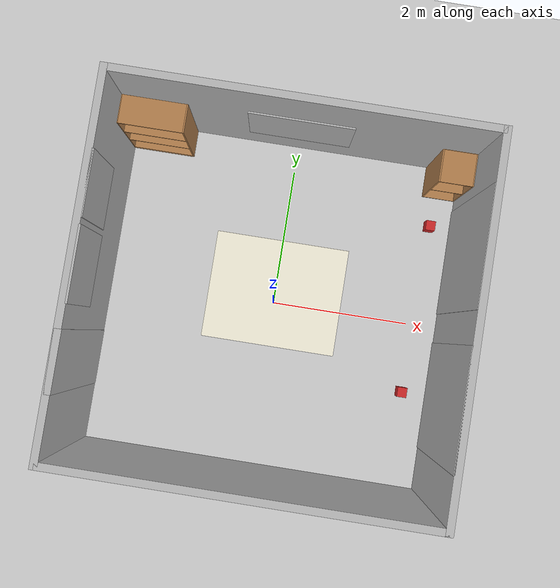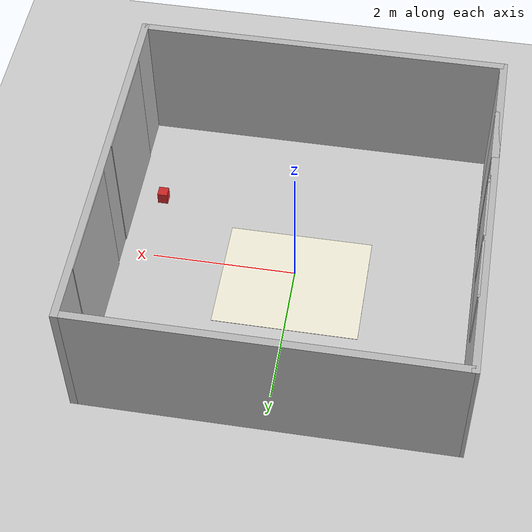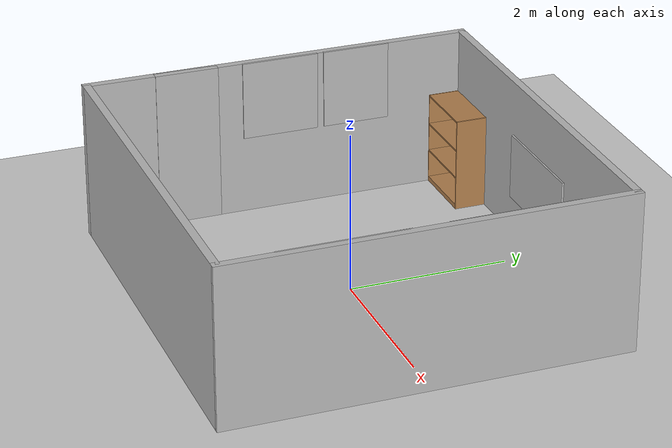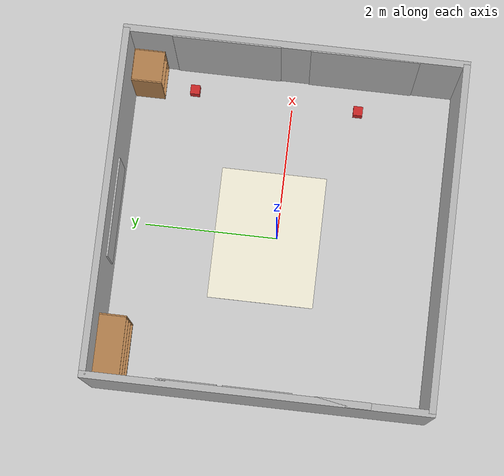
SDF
<sdf version="1.7">
 <world name="default">
  <light name="sun" type="directional">
   <pose>0 0 10 0 -0 0</pose>
   <diffuse>0.8 0.8 0.8 1</diffuse>
   <specular>0.2 0.2 0.2 1</specular>
   <attenuation>
    <range>1000</range>
    <constant>0.9</constant>
    <linear>0.01</linear>
    <quadratic>0.001</quadratic>
   </attenuation>
   <direction>-0.5 0.1 -0.9</direction>
   <spot><inner_angle>0</inner_angle><outer_angle>0</outer_angle><falloff>0</falloff></spot>
  </light>
  <model name="ground_plane">
   <static>1</static>
   <link name="link">
    <collision name="collision">
     <geometry><plane><normal>0 0 1</normal><size>100 100</size></plane></geometry>
     <surface>
      <contact><collide_bitmask>65535</collide_bitmask></contact>
      <friction><ode><mu>100</mu><mu2>50</mu2></ode></friction>
     </surface>
    </collision>
    <visual name="visual">
     <cast_shadows>0</cast_shadows>
     <geometry><plane><normal>0 0 1</normal><size>1 1</size></plane></geometry>
     <material>
      <script><uri>file://media/materials/scripts/gazebo.material</uri><name>Gazebo/Grey</name></script>
     </material>
    </visual>
   </link>
  </model>
  <gravity>0 0 -9.8</gravity>
  <magnetic_field>6e-06 2.3e-05 -4.2e-05</magnetic_field>
  <atmosphere type="adiabatic"/>
  <physics type="ode">
   <max_step_size>0.001</max_step_size>
   <real_time_factor>1</real_time_factor>
   <real_time_update_rate>1000</real_time_update_rate>
  </physics>
  <scene><ambient>0.4 0.4 0.4 1</ambient><background>0.7 0.7 0.7 1</background><shadows>1</shadows></scene>
  <audio><device>default</device></audio>
  <spherical_coordinates>
   <surface_model>EARTH_WGS84</surface_model>
   <latitude_deg>0</latitude_deg>
   <longitude_deg>0</longitude_deg>
   <elevation>0</elevation>
   <heading_deg>0</heading_deg>
  </spherical_coordinates>
  <model name="Bookshelf">
   <static>1</static>
   <link name="link">
    <inertial><mass>1</mass></inertial>
    <collision name="back">
     <pose>0 0.005 0.6 0 -0 0</pose>
     <geometry><box><size>0.9 0.01 1.2</size></box></geometry>
    </collision>
    <visual name="visual1">
     <pose>0 0.005 0.6 0 -0 0</pose>
     <geometry><box><size>0.9 0.01 1.2</size></box></geometry>
     <material>
      <diffuse>1 1 1 1</diffuse>
      <script><uri>file://media/materials/scripts/gazebo.material</uri><name>Gazebo/Wood</name></script>
      <pbr>
       <metal>
        <albedo_map>https://fuel.ignitionrobotics.org/1.0/openrobotics/models/bookshelf/3/files/bookshelf_diffuse.jpg</albedo_map>
       </metal>
      </pbr>
     </material>
    </visual>
    <collision name="left_side">
     <pose>0.45 -0.195 0.6 0 -0 0</pose>
     <geometry><box><size>0.02 0.4 1.2</size></box></geometry>
    </collision>
    <visual name="visual2">
     <pose>0.45 -0.195 0.6 0 -0 0</pose>
     <geometry><box><size>0.02 0.4 1.2</size></box></geometry>
     <material>
      <diffuse>1 1 1 1</diffuse>
      <script><uri>file://media/materials/scripts/gazebo.material</uri><name>Gazebo/Wood</name></script>
      <pbr>
       <metal>
        <albedo_map>https://fuel.ignitionrobotics.org/1.0/openrobotics/models/bookshelf/3/files/bookshelf_diffuse.jpg</albedo_map>
       </metal>
      </pbr>
     </material>
    </visual>
    <collision name="right_side">
     <pose>-0.45 -0.195 0.6 0 -0 0</pose>
     <geometry><box><size>0.02 0.4 1.2</size></box></geometry>
    </collision>
    <visual name="visual3">
     <pose>-0.45 -0.195 0.6 0 -0 0</pose>
     <geometry><box><size>0.02 0.4 1.2</size></box></geometry>
     <material>
      <diffuse>1 1 1 1</diffuse>
      <script><uri>file://media/materials/scripts/gazebo.material</uri><name>Gazebo/Wood</name></script>
      <pbr>
       <metal>
        <albedo_map>https://fuel.ignitionrobotics.org/1.0/openrobotics/models/bookshelf/3/files/bookshelf_diffuse.jpg</albedo_map>
       </metal>
      </pbr>
     </material>
    </visual>
    <collision name="bottom">
     <pose>0 -0.195 0.03 0 -0 0</pose>
     <geometry><box><size>0.88 0.4 0.06</size></box></geometry>
    </collision>
    <visual name="visual4">
     <pose>0 -0.195 0.03 0 -0 0</pose>
     <geometry><box><size>0.88 0.4 0.06</size></box></geometry>
     <material>
      <diffuse>1 1 1 1</diffuse>
      <script><uri>file://media/materials/scripts/gazebo.material</uri><name>Gazebo/Wood</name></script>
      <pbr>
       <metal>
        <albedo_map>https://fuel.ignitionrobotics.org/1.0/openrobotics/models/bookshelf/3/files/bookshelf_diffuse.jpg</albedo_map>
       </metal>
      </pbr>
     </material>
    </visual>
    <collision name="top">
     <pose>0 -0.195 1.19 0 -0 0</pose>
     <geometry><box><size>0.88 0.4 0.02</size></box></geometry>
    </collision>
    <visual name="visual5">
     <pose>0 -0.195 1.19 0 -0 0</pose>
     <geometry><box><size>0.88 0.4 0.02</size></box></geometry>
     <material>
      <diffuse>1 1 1 1</diffuse>
      <script><uri>file://media/materials/scripts/gazebo.material</uri><name>Gazebo/Wood</name></script>
      <pbr>
       <metal>
        <albedo_map>https://fuel.ignitionrobotics.org/1.0/openrobotics/models/bookshelf/3/files/bookshelf_diffuse.jpg</albedo_map>
       </metal>
      </pbr>
     </material>
    </visual>
    <collision name="low_shelf">
     <pose>0 -0.195 0.43 0 -0 0</pose>
     <geometry><box><size>0.88 0.4 0.02</size></box></geometry>
    </collision>
    <visual name="visual6">
     <pose>0 -0.195 0.43 0 -0 0</pose>
     <geometry><box><size>0.88 0.4 0.02</size></box></geometry>
     <material>
      <diffuse>1 1 1 1</diffuse>
      <script><uri>file://media/materials/scripts/gazebo.material</uri><name>Gazebo/Wood</name></script>
      <pbr>
       <metal>
        <albedo_map>https://fuel.ignitionrobotics.org/1.0/openrobotics/models/bookshelf/3/files/bookshelf_diffuse.jpg</albedo_map>
       </metal>
      </pbr>
     </material>
    </visual>
    <collision name="high_shelf">
     <pose>0 -0.195 0.8 0 -0 0</pose>
     <geometry><box><size>0.88 0.4 0.02</size></box></geometry>
    </collision>
    <visual name="visual7">
     <pose>0 -0.195 0.8 0 -0 0</pose>
     <geometry><box><size>0.88 0.4 0.02</size></box></geometry>
     <material>
      <diffuse>1 1 1 1</diffuse>
      <script><uri>file://media/materials/scripts/gazebo.material</uri><name>Gazebo/Wood</name></script>
      <pbr>
       <metal>
        <albedo_map>https://fuel.ignitionrobotics.org/1.0/openrobotics/models/bookshelf/3/files/bookshelf_diffuse.jpg</albedo_map>
       </metal>
      </pbr>
     </material>
    </visual>
   </link>
   <pose>-2 2.4 0 0 -0 0</pose>
  </model>
  <model name="cabinet">
   <static>1</static>
   <link name="cabinet_bottom_plate">
    <inertial>
     <pose>0 0 -1 0 -0 0</pose>
     <inertia><ixx>2.05</ixx><ixy>0</ixy><ixz>0</ixz><iyy>2.05</iyy><iyz>0</iyz><izz>2.05</izz></inertia>
     <mass>25</mass>
    </inertial>
    <collision name="cabinet_bottom_plate_geom">
     <pose>0 0 0.01 0 -0 0</pose>
     <geometry><box><size>0.45 0.45 0.02</size></box></geometry>
    </collision>
    <visual name="cabinet_bottom_plate_geom_visual">
     <pose>0 0 0.01 0 -0 0</pose>
     <geometry><box><size>0.45 0.45 0.02</size></box></geometry>
     <material>
      <script><uri>file://media/materials/scripts/gazebo.material</uri><name>Gazebo/Wood</name></script>
     </material>
    </visual>
    <collision name="cabinet_bottom_plate_geom_cabinet_back_plate">
     <pose>0.235 0 0.51 0 -0 0</pose>
     <geometry><box><size>0.02 0.45 1.02</size></box></geometry>
    </collision>
    <visual name="cabinet_bottom_plate_geom_cabinet_back_plate_visual">
     <pose>0.235 0 0.51 0 -0 0</pose>
     <geometry><box><size>0.02 0.45 1.02</size></box></geometry>
     <material>
      <script><uri>file://media/materials/scripts/gazebo.material</uri><name>Gazebo/Wood</name></script>
     </material>
    </visual>
    <collision name="cabinet_bottom_plate_geom_cabinet_left_plate">
     <pose>0 0.235 0.51 0 -0 0</pose>
     <geometry><box><size>0.45 0.02 1.02</size></box></geometry>
    </collision>
    <visual name="cabinet_bottom_plate_geom_cabinet_left_plate_visual">
     <pose>0 0.235 0.51 0 -0 0</pose>
     <geometry><box><size>0.45 0.02 1.02</size></box></geometry>
     <material>
      <script><uri>file://media/materials/scripts/gazebo.material</uri><name>Gazebo/Wood</name></script>
     </material>
    </visual>
    <collision name="cabinet_bottom_plate_geom_cabinet_middle_plate">
     <pose>0 0 0.51 0 -0 0</pose>
     <geometry><box><size>0.45 0.45 0.02</size></box></geometry>
    </collision>
    <visual name="cabinet_bottom_plate_geom_cabinet_middle_plate_visual">
     <pose>0 0 0.51 0 -0 0</pose>
     <geometry><box><size>0.45 0.45 0.02</size></box></geometry>
     <material>
      <script><uri>file://media/materials/scripts/gazebo.material</uri><name>Gazebo/Wood</name></script>
     </material>
    </visual>
    <collision name="cabinet_bottom_plate_geom_cabinet_right_plate">
     <pose>0 -0.235 0.51 0 -0 0</pose>
     <geometry><box><size>0.45 0.02 1.02</size></box></geometry>
    </collision>
    <visual name="cabinet_bottom_plate_geom_cabinet_right_plate_visual">
     <pose>0 -0.235 0.51 0 -0 0</pose>
     <geometry><box><size>0.45 0.02 1.02</size></box></geometry>
     <material>
      <script><uri>file://media/materials/scripts/gazebo.material</uri><name>Gazebo/Wood</name></script>
     </material>
    </visual>
    <collision name="cabinet_bottom_plate_geom_cabinet_top_plate">
     <pose>0 0 1.01 0 -0 0</pose>
     <geometry><box><size>0.45 0.45 0.02</size></box></geometry>
    </collision>
    <visual name="cabinet_bottom_plate_geom_cabinet_top_plate_visual">
     <pose>0 0 1.01 0 -0 0</pose>
     <geometry><box><size>0.45 0.45 0.02</size></box></geometry>
     <material>
      <script><uri>file://media/materials/scripts/gazebo.material</uri><name>Gazebo/Wood</name></script>
     </material>
    </visual>
   </link>
   <pose>2.21 2.17 0 0 -0 1.5707</pose>
  </model>
  <model name="makerspet_poster">
   <link name="link">
    <visual name="visual">
     <geometry><box><size>0.03 0.85714 1</size></box></geometry>
     <material>
      <script>
       <uri>https://fuel.ignitionrobotics.org/1.0/makerspet/models/makerspet_poster/1/files/material/script</uri>
       <uri>https://fuel.ignitionrobotics.org/1.0/makerspet/models/makerspet_poster/1/files/material/textures</uri>
       <name>Custom/makerspet</name>
      </script>
     </material>
    </visual>
   </link>
   <static>1</static>
   <pose>-2.45 1 1.5 0 -0 0</pose>
  </model>
  <model name="kaiaai_poster">
   <link name="link">
    <visual name="visual">
     <geometry><box><size>0.03 0.9782 1</size></box></geometry>
     <material>
      <script>
       <uri>https://fuel.ignitionrobotics.org/1.0/makerspet/models/kaiaai_poster/1/files/material/script</uri>
       <uri>https://fuel.ignitionrobotics.org/1.0/makerspet/models/kaiaai_poster/1/files/material/textures</uri>
       <name>Custom/kaiaai</name>
      </script>
     </material>
    </visual>
   </link>
   <static>1</static>
   <pose>-2.45 0 1.5 0 -0 0</pose>
  </model>
  <model name="door_08x2m_0">
   <link name="link">
    <visual name="visual">
     <geometry><box><size>0.1 0.8 2</size></box></geometry>
     <material>
      <script>
       <uri>https://fuel.ignitionrobotics.org/1.0/makerspet/models/door_08x2m/1/files/material/script</uri>
       <uri>https://fuel.ignitionrobotics.org/1.0/makerspet/models/door_08x2m/1/files/material/textures</uri>
       <name>Custom/door_08x2m</name>
      </script>
     </material>
    </visual>
   </link>
   <static>1</static>
   <pose>-2.495 -1.2 1 0 -0 0</pose>
  </model>
  <model name="living_room"><static>0</static><pose>-1.83596 1.40391 0 0 -0 0</pose></model>
  <model name="room_wall_2x5">
   <link name="link">
    <visual name="visual">
     <geometry><box><size>0.1 5 2</size></box></geometry>
     <material>
      <script>
       <uri>https://fuel.ignitionrobotics.org/1.0/makerspet/models/room_wall_2x5m/1/files/material/script</uri>
       <uri>https://fuel.ignitionrobotics.org/1.0/makerspet/models/room_wall_2x5m/1/files/material/textures</uri>
       <name>Custom/room_wall_2x5</name>
      </script>
     </material>
    </visual>
    <collision name="collision"><geometry><box><size>0.1 5 2</size></box></geometry></collision>
   </link>
   <static>1</static>
   <pose>-2.5 0 1 0 -0 0</pose>
  </model>
  <model name="room_wall_2x5_0">
   <link name="link">
    <visual name="visual">
     <geometry><box><size>0.1 5 2</size></box></geometry>
     <material>
      <script>
       <uri>https://fuel.ignitionrobotics.org/1.0/makerspet/models/room_wall_2x5m/1/files/material/script</uri>
       <uri>https://fuel.ignitionrobotics.org/1.0/makerspet/models/room_wall_2x5m/1/files/material/textures</uri>
       <name>Custom/room_wall_2x5</name>
      </script>
     </material>
    </visual>
    <collision name="collision"><geometry><box><size>0.1 5 2</size></box></geometry></collision>
   </link>
   <static>1</static>
   <pose>2.5 0 1 0 -0 0</pose>
  </model>
  <model name="room_wall_2x5_1">
   <link name="link">
    <visual name="visual">
     <geometry><box><size>0.1 5 2</size></box></geometry>
     <material>
      <script>
       <uri>https://fuel.ignitionrobotics.org/1.0/makerspet/models/room_wall_2x5m/1/files/material/script</uri>
       <uri>https://fuel.ignitionrobotics.org/1.0/makerspet/models/room_wall_2x5m/1/files/material/textures</uri>
       <name>Custom/room_wall_2x5</name>
      </script>
     </material>
    </visual>
    <collision name="collision"><geometry><box><size>0.1 5 2</size></box></geometry></collision>
   </link>
   <static>1</static>
   <pose>0 -2.45 1 0 -0 1.5707</pose>
  </model>
  <model name="room_wall_2x5_2">
   <link name="link">
    <visual name="visual">
     <geometry><box><size>0.1 5 2</size></box></geometry>
     <material>
      <script>
       <uri>https://fuel.ignitionrobotics.org/1.0/makerspet/models/room_wall_2x5m/1/files/material/script</uri>
       <uri>https://fuel.ignitionrobotics.org/1.0/makerspet/models/room_wall_2x5m/1/files/material/textures</uri>
       <name>Custom/room_wall_2x5</name>
      </script>
     </material>
    </visual>
    <collision name="collision"><geometry><box><size>0.1 5 2</size></box></geometry></collision>
   </link>
   <static>1</static>
   <pose>0 2.45 1 0 -0 1.5707</pose>
  </model>
  <model name="rug_ivory_2m_0">
   <link name="link">
    <visual name="visual">
     <geometry><box><size>1.6 2 0.005</size></box></geometry>
     <material>
      <script>
       <uri>https://fuel.ignitionrobotics.org/1.0/makerspet/models/rug_ivory_2m/1/files/material/script</uri>
       <uri>https://fuel.ignitionrobotics.org/1.0/makerspet/models/rug_ivory_2m/1/files/material/textures</uri>
       <name>Custom/rug_ivory_2m</name>
      </script>
     </material>
    </visual>
   </link>
   <static>1</static>
   <pose>0 0.15 0 0 -0 1.5707</pose>
  </model>
  <model name="window_curtains">
   <link name="link">
    <visual name="visual">
     <geometry><box><size>0.02 1.5676 2</size></box></geometry>
     <material>
      <script>
       <uri>https://fuel.ignitionrobotics.org/1.0/makerspet/models/window_curtains/1/files/material/script</uri>
       <uri>https://fuel.ignitionrobotics.org/1.0/makerspet/models/window_curtains/1/files/material/textures</uri>
       <name>Custom/window_curtains</name>
      </script>
      <emissive>0 1 0 1</emissive>
     </material>
    </visual>
   </link>
   <static>1</static>
   <pose>2.45 1 1 0 -0 0</pose>
  </model>
  <model name="window_curtains_0">
   <link name="link">
    <visual name="visual">
     <geometry><box><size>0.02 1.5676 2</size></box></geometry>
     <material>
      <script>
       <uri>https://fuel.ignitionrobotics.org/1.0/makerspet/models/window_curtains/1/files/material/script</uri>
       <uri>https://fuel.ignitionrobotics.org/1.0/makerspet/models/window_curtains/1/files/material/textures</uri>
       <name>Custom/window_curtains</name>
      </script>
      <emissive>0 1 0 1</emissive>
     </material>
    </visual>
   </link>
   <static>1</static>
   <pose>2.45 -1 1 0 -0 0</pose>
  </model>
  <model name="tv_65in_emissive">
   <link name="link">
    <visual name="visual">
     <geometry><box><size>0.05 1.45 0.83</size></box></geometry>
     <material>
      <script>
       <uri>https://fuel.ignitionrobotics.org/1.0/makerspet/models/tv_65in_emissive/4/files/material/script</uri>
       <uri>https://fuel.ignitionrobotics.org/1.0/makerspet/models/tv_65in_emissive/4/files/material/textures</uri>
       <name>Custom/tv_emissive</name>
      </script>
     </material>
    </visual>
   </link>
   <static>1</static>
   <pose>0 2.4 0.9 0 -0 1.5707</pose>
  </model>
  <model name="unit_box">
   <link name="link">
    <inertial>
     <mass>1</mass>
     <inertia>
      <ixx>0.166667</ixx>
      <ixy>0</ixy>
      <ixz>0</ixz>
      <iyy>0.166667</iyy>
      <iyz>0</iyz>
      <izz>0.166667</izz>
     </inertia>
    </inertial>
    <visual name="visual">
     <geometry><box><size>0.139873 0.143387 0.183908</size></box></geometry>
     <material>
      <script><name>Gazebo/Red</name><uri>file://media/materials/scripts/gazebo.material</uri></script>
      <shader type="pixel"><normal_map>__default__</normal_map></shader>
      <ambient>1 0.3 0.3 1</ambient>
      <diffuse>1 0.7 0.7 1</diffuse>
      <specular>1 0.01 0.01 1</specular>
      <emissive>0.9 0 0 1</emissive>
     </material>
    </visual>
    <collision name="collision">
     <geometry><box><size>0.139873 0.143387 0.183908</size></box></geometry>
     <surface>
      <friction>
       <ode><mu>1</mu><mu2>1</mu2><fdir1>0 0 0</fdir1><slip1>0</slip1><slip2>0</slip2></ode>
       <torsional>
        <coefficient>1</coefficient>
        <patch_radius>0</patch_radius>
        <surface_radius>0</surface_radius>
        <use_patch_radius>1</use_patch_radius>
        <ode><slip>0</slip></ode>
       </torsional>
      </friction>
      <bounce><restitution_coefficient>0</restitution_coefficient><threshold>1e+06</threshold></bounce>
      <contact>
       <collide_without_contact>0</collide_without_contact>
       <collide_without_contact_bitmask>1</collide_without_contact_bitmask>
       <collide_bitmask>1</collide_bitmask>
       <ode>
        <soft_cfm>0</soft_cfm>
        <soft_erp>0.2</soft_erp>
        <kp>1e+13</kp>
        <kd>1</kd>
        <max_vel>0.01</max_vel>
        <min_depth>0</min_depth>
       </ode>
       <bullet>
        <split_impulse>1</split_impulse>
        <split_impulse_penetration_threshold>-0.01</split_impulse_penetration_threshold>
        <soft_cfm>0</soft_cfm>
        <soft_erp>0.2</soft_erp>
        <kp>1e+13</kp>
        <kd>1</kd>
       </bullet>
      </contact>
     </surface>
    </collision>
   </link>
   <static>0</static>
   <pose>2.12407 1.4948 0.091954 -2e-06 -3e-06 -2.5e-05</pose>
  </model>
  <model name="unit_box_0">
   <link name="link">
    <inertial>
     <mass>1</mass>
     <inertia>
      <ixx>0.166667</ixx>
      <ixy>0</ixy>
      <ixz>0</ixz>
      <iyy>0.166667</iyy>
      <iyz>0</iyz>
      <izz>0.166667</izz>
     </inertia>
    </inertial>
    <visual name="visual">
     <geometry><box><size>0.139873 0.143387 0.183908</size></box></geometry>
     <material>
      <script><name>Gazebo/Red</name><uri>file://media/materials/scripts/gazebo.material</uri></script>
      <shader type="pixel"><normal_map>__default__</normal_map></shader>
      <ambient>1 0.3 0.3 1</ambient>
      <diffuse>1 0.7 0.7 1</diffuse>
      <specular>1 0.01 0.01 1</specular>
      <emissive>0.9 0 0 1</emissive>
     </material>
    </visual>
    <collision name="collision">
     <geometry><box><size>0.139873 0.143387 0.183908</size></box></geometry>
     <surface>
      <friction>
       <ode><mu>1</mu><mu2>1</mu2><fdir1>0 0 0</fdir1><slip1>0</slip1><slip2>0</slip2></ode>
       <torsional>
        <coefficient>1</coefficient>
        <patch_radius>0</patch_radius>
        <surface_radius>0</surface_radius>
        <use_patch_radius>1</use_patch_radius>
        <ode><slip>0</slip></ode>
       </torsional>
      </friction>
      <bounce><restitution_coefficient>0</restitution_coefficient><threshold>1e+06</threshold></bounce>
      <contact>
       <collide_without_contact>0</collide_without_contact>
       <collide_without_contact_bitmask>1</collide_without_contact_bitmask>
       <collide_bitmask>1</collide_bitmask>
       <ode>
        <soft_cfm>0</soft_cfm>
        <soft_erp>0.2</soft_erp>
        <kp>1e+13</kp>
        <kd>1</kd>
        <max_vel>0.01</max_vel>
        <min_depth>0</min_depth>
       </ode>
       <bullet>
        <split_impulse>1</split_impulse>
        <split_impulse_penetration_threshold>-0.01</split_impulse_penetration_threshold>
        <soft_cfm>0</soft_cfm>
        <soft_erp>0.2</soft_erp>
        <kp>1e+13</kp>
        <kd>1</kd>
       </bullet>
      </contact>
     </surface>
    </collision>
   </link>
   <static>0</static>
   <pose>2.06864 -1.00799 0.091954 1e-06 3e-06 -1.5e-05</pose>
  </model>
 </world>
</sdf>
